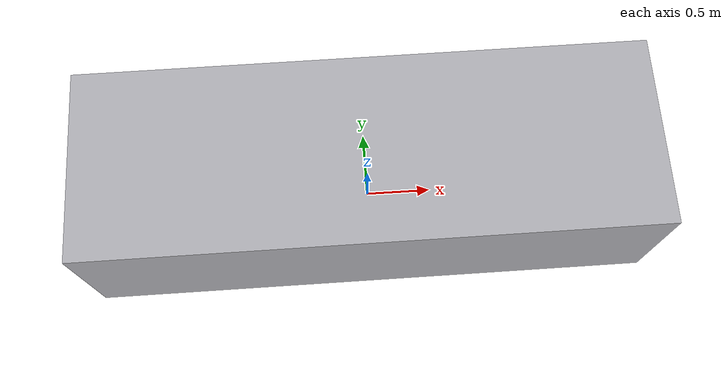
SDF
<?xml version='1.0' encoding='utf-8'?>
<sdf version="1.6">
  <model name="aws_robomaker_hospital_nursesstation_01">
    <static>true</static>
    <link name="link">
      <collision name="collision_1">
        <pose>0 0 0.5 0 0 0</pose>
        <geometry>
          <box>
            <size>4.2 1.4 1.1</size>
          </box>
        </geometry>
      </collision>
      <visual name="visual_1">
        <pose>0 0 0.5 0 0 0</pose>
        <geometry>
          <box>
            <size>4.2 1.4 1.1</size>
          </box>
        </geometry>
        <material>
          <ambient>0.72 0.72 0.74 1</ambient>
          <diffuse>0.72 0.72 0.74 1</diffuse>
          <specular>0.08 0.08 0.08 1</specular>
        </material>
      </visual>
    </link>
  </model>
</sdf>
